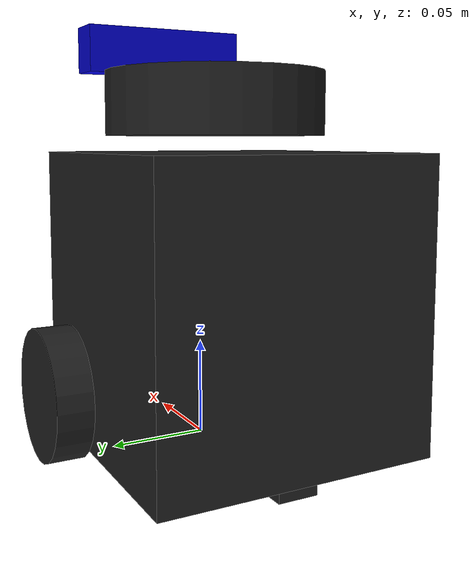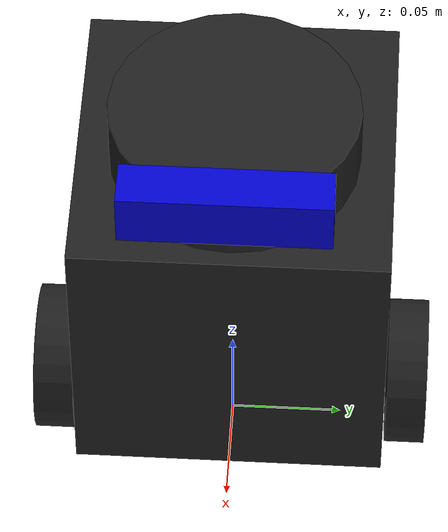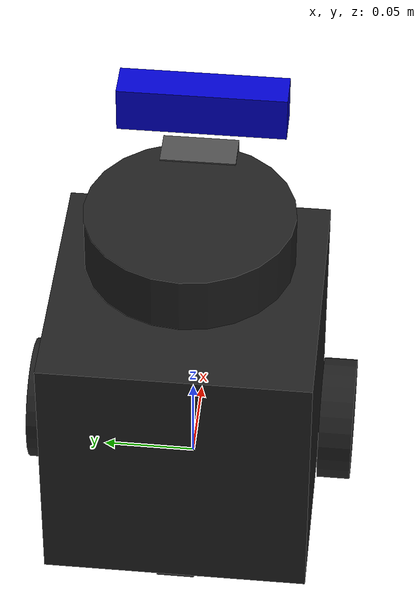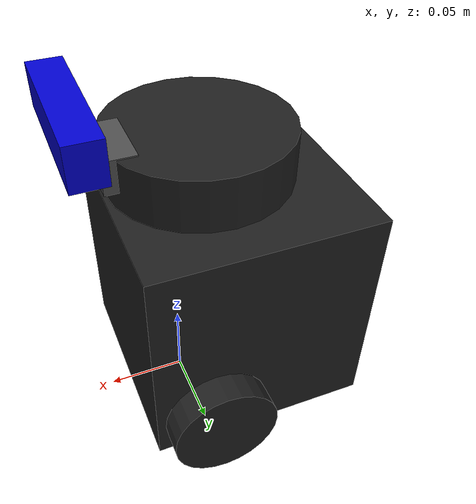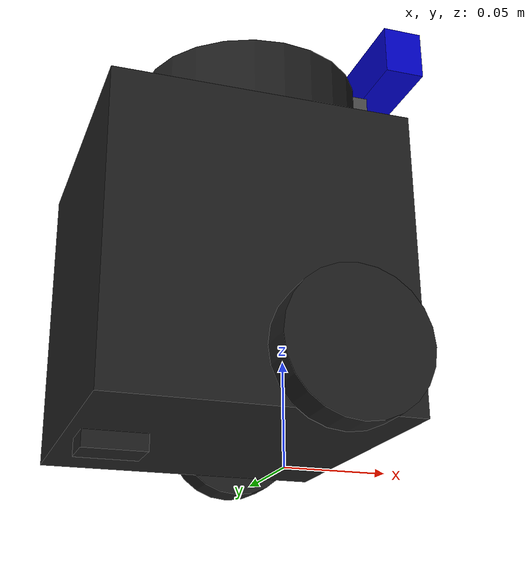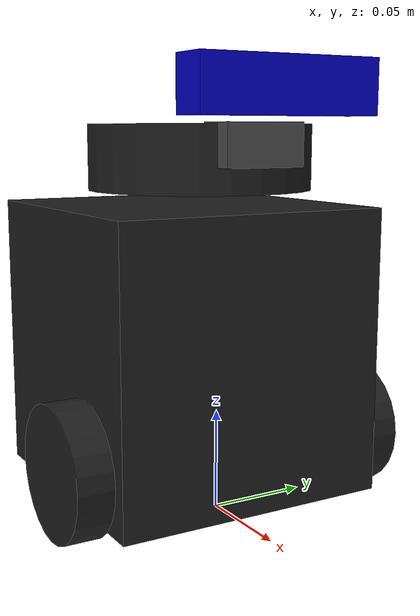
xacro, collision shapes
<?xml version="1.0" ?>
<robot name="turtlebot3_burger" xmlns:xacro="http://ros.org/wiki/xacro">
  <xacro:include filename="$(find turtlebot3_description)/urdf/common_properties.xacro"/>
  <xacro:include filename="$(find turtlebot3_description)/urdf/turtlebot3_burger.gazebo.xacro"/>

  <link name="base_footprint"/>

  <joint name="base_joint" type="fixed">
    <parent link="base_footprint"/>
    <child link="base_link"/>
    <origin xyz="0.0 0.0 0.010" rpy="0 0 0"/>
  </joint>

  <link name="base_link">
    <visual>
      <origin xyz="-0.032 0 0.0" rpy="0 0 0"/>
      <geometry>
        <mesh filename="package://turtlebot3_description/meshes/bases/burger_base.stl" scale="0.001 0.001 0.001"/>
      </geometry>
      <material name="light_black"/>
    </visual>

    <collision>
      <origin xyz="-0.032 0 0.070" rpy="0 0 0"/>
      <geometry>
        <box size="0.140 0.140 0.143"/>
      </geometry>
    </collision>

    <inertial>
      <origin xyz="0 0 0" rpy="0 0 0"/>
      <mass value="8.2573504e-01"/>
      <inertia ixx="2.2124416e-03" ixy="-1.2294101e-05" ixz="3.4938785e-05"
               iyy="2.1193702e-03" iyz="-5.0120904e-06"
               izz="2.0064271e-03" />
    </inertial>
  </link>

  <joint name="wheel_left_joint" type="continuous">
    <parent link="base_link"/>
    <child link="wheel_left_link"/>
    <origin xyz="0.0 0.08 0.023" rpy="-1.57 0 0"/>
    <axis xyz="0 0 1"/>
  </joint>

  <link name="wheel_left_link">
    <visual>
      <origin xyz="0 0 0" rpy="1.57 0 0"/>
      <geometry>
        <mesh filename="package://turtlebot3_description/meshes/wheels/left_tire.stl" scale="0.001 0.001 0.001"/>
      </geometry>
      <material name="dark"/>
    </visual>

    <collision>
      <origin xyz="0 0 0" rpy="0 0 0"/>
      <geometry>
        <cylinder length="0.018" radius="0.033"/>
      </geometry>
    </collision>

    <inertial>
      <origin xyz="0 0 0" />
      <mass value="2.8498940e-02" />
      <inertia ixx="1.1175580e-05" ixy="-4.2369783e-11" ixz="-5.9381719e-09"
               iyy="1.1192413e-05" iyz="-1.4400107e-11"
               izz="2.0712558e-05" />
      </inertial>
  </link>

  <joint name="wheel_right_joint" type="continuous">
    <parent link="base_link"/>
    <child link="wheel_right_link"/>
    <origin xyz="0.0 -0.080 0.023" rpy="-1.57 0 0"/>
    <axis xyz="0 0 1"/>
  </joint>

  <link name="wheel_right_link">
    <visual>
      <origin xyz="0 0 0" rpy="1.57 0 0"/>
      <geometry>
        <mesh filename="package://turtlebot3_description/meshes/wheels/right_tire.stl" scale="0.001 0.001 0.001"/>
      </geometry>
      <material name="dark"/>
    </visual>

    <collision>
      <origin xyz="0 0 0" rpy="0 0 0"/>
      <geometry>
        <cylinder length="0.018" radius="0.033"/>
      </geometry>
    </collision>

    <inertial>
      <origin xyz="0 0 0" />
      <mass value="2.8498940e-02" />
      <inertia ixx="1.1175580e-05" ixy="-4.2369783e-11" ixz="-5.9381719e-09"
               iyy="1.1192413e-05" iyz="-1.4400107e-11"
               izz="2.0712558e-05" />
      </inertial>
  </link>

  <joint name="caster_back_joint" type="fixed">
    <parent link="base_link"/>
    <child link="caster_back_link"/>
    <origin xyz="-0.081 0 -0.004" rpy="-1.57 0 0"/>
  </joint>

  <link name="caster_back_link">
    <collision>
      <origin xyz="0 0.001 0" rpy="0 0 0"/>
      <geometry>
        <box size="0.030 0.009 0.020"/>
      </geometry>
    </collision>

    <inertial>
      <origin xyz="0 0 0" />
      <mass value="0.005" />
      <inertia ixx="0.001" ixy="0.0" ixz="0.0"
               iyy="0.001" iyz="0.0"
               izz="0.001" />
    </inertial>
  </link>

  <joint name="imu_joint" type="fixed">
    <parent link="base_link"/>
    <child link="imu_link"/>
    <origin xyz="-0.032 0 0.068" rpy="0 0 0"/>
  </joint>

  <link name="imu_link"/>

  <joint name="scan_joint" type="fixed">
    <parent link="base_link"/>
    <child link="base_scan"/>
    <origin xyz="-0.032 0 0.172" rpy="0 0 0"/>
  </joint>

  <link name="base_scan">
    <visual>
      <origin xyz="0 0 0.0" rpy="0 0 0"/>
      <geometry>
        <mesh filename="package://turtlebot3_description/meshes/sensors/lds.stl" scale="0.001 0.001 0.001"/>
      </geometry>
      <material name="dark"/>
    </visual>

    <collision>
      <origin xyz="0.015 0 -0.0065" rpy="0 0 0"/>
      <geometry>
        <cylinder length="0.0315" radius="0.055"/>
      </geometry>
    </collision>

    <inertial>
      <mass value="0.114" />
      <origin xyz="0 0 0" />
      <inertia ixx="0.001" ixy="0.0" ixz="0.0"
               iyy="0.001" iyz="0.0"
               izz="0.001" />
    </inertial>
  </link>

  <!-- Intel RealSense Camera -->
  <!-- Camera mount joint -->
  <joint name="camera_mount_joint" type="fixed">
    <parent link="base_link"/>
    <child link="camera_mount_link"/>
    <origin xyz="0.032 0 0.172" rpy="0 0 0"/>
  </joint>

  <link name="camera_mount_link">
    <visual>
      <origin xyz="0 0 0" rpy="0 0 0"/>
      <geometry>
        <box size="0.02 0.04 0.02"/>
      </geometry>
      <material name="dark"/>
    </visual>

    <collision>
      <origin xyz="0 0 0" rpy="0 0 0"/>
      <geometry>
        <box size="0.02 0.04 0.02"/>
      </geometry>
    </collision>

    <inertial>
      <origin xyz="0 0 0" />
      <mass value="0.01" />
      <inertia ixx="0.0001" ixy="0.0" ixz="0.0"
               iyy="0.0001" iyz="0.0"
               izz="0.0001" />
    </inertial>
  </link>

  <!-- Camera joint -->
  <joint name="camera_joint" type="fixed">
    <parent link="camera_mount_link"/>
    <child link="camera_link"/>
    <origin xyz="0.02 0 0.025" rpy="0 0 0"/>
  </joint>

  <link name="camera_link">
    <visual>
      <origin xyz="0 0 0" rpy="0 0 0"/>
      <geometry>
        <box size="0.02 0.09 0.025"/>
      </geometry>
      <material name="blue">
        <color rgba="0.0 0.0 0.8 1.0"/>
      </material>
    </visual>

    <collision>
      <origin xyz="0 0 0" rpy="0 0 0"/>
      <geometry>
        <box size="0.02 0.09 0.025"/>
      </geometry>
    </collision>

    <inertial>
      <origin xyz="0 0 0" />
      <mass value="0.095" />
      <inertia ixx="0.0001" ixy="0.0" ixz="0.0"
               iyy="0.0001" iyz="0.0"
               izz="0.0001" />
    </inertial>
  </link>

  <!-- Camera optical frame -->
  <joint name="camera_optical_joint" type="fixed">
    <parent link="camera_link"/>
    <child link="camera_color_optical_frame"/>
    <origin xyz="0 0 0" rpy="-1.5707963267948966 0 -1.5707963267948966"/>
  </joint>

  <link name="camera_color_optical_frame"/>

  <!-- Depth camera optical frame -->
  <joint name="camera_depth_optical_joint" type="fixed">
    <parent link="camera_link"/>
    <child link="camera_depth_optical_frame"/>
    <origin xyz="0 0.02 0" rpy="-1.5707963267948966 0 -1.5707963267948966"/>
  </joint>

  <link name="camera_depth_optical_frame"/>

  <!-- Add Gazebo plugins -->
  <gazebo reference="camera_link">
    <sensor type="depth" name="realsense_d435">
      <update_rate>30.0</update_rate>
      <camera name="realsense_d435">
        <horizontal_fov>1.0472</horizontal_fov>
        <image>
          <width>640</width>
          <height>480</height>
          <format>R8G8B8</format>
        </image>
        <clip>
          <near>0.1</near>
          <far>10.0</far>
        </clip>
        <noise>
          <type>gaussian</type>
          <mean>0.0</mean>
          <stddev>0.007</stddev>
        </noise>
      </camera>
      <plugin name="camera_controller" filename="libgazebo_ros_openni_kinect.so">
        <baseline>0.2</baseline>
        <alwaysOn>true</alwaysOn>
        <updateRate>30.0</updateRate>
        <cameraName>camera</cameraName>
        <imageTopicName>/camera/rgb/image_raw</imageTopicName>
        <cameraInfoTopicName>/camera/rgb/camera_info</cameraInfoTopicName>
        <depthImageTopicName>/camera/depth/image_raw</depthImageTopicName>
        <depthImageCameraInfoTopicName>/camera/depth/camera_info</depthImageCameraInfoTopicName>
        <pointCloudTopicName>/camera/depth/points</pointCloudTopicName>
        <frameName>camera_color_optical_frame</frameName>
        <pointCloudCutoff>0.1</pointCloudCutoff>
        <pointCloudCutoffMax>10.0</pointCloudCutoffMax>
        <distortionK1>0.0</distortionK1>
        <distortionK2>0.0</distortionK2>
        <distortionK3>0.0</distortionK3>
        <distortionT1>0.0</distortionT1>
        <distortionT2>0.0</distortionT2>
      </plugin>
    </sensor>
  </gazebo>

</robot>
